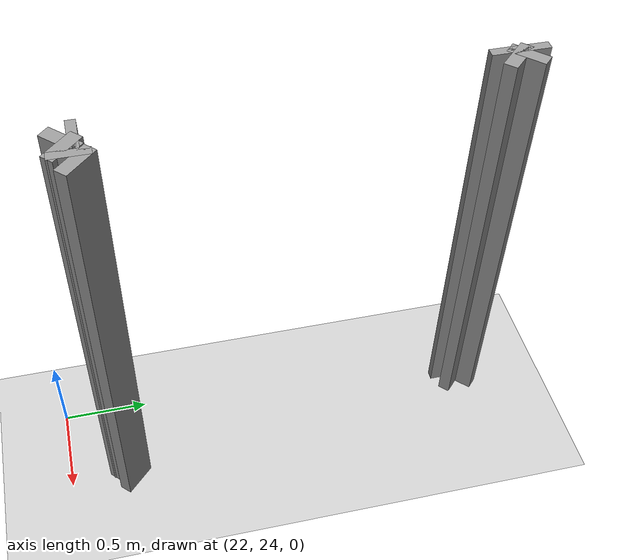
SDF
<sdf version="1.4">
 <world name="1_wall">
  <model name="ground_plane">
   <static>1</static>
   <link name="link">
    <collision name="collision">
     <geometry><plane><normal>0 0 1</normal><size>1000 1000</size></plane></geometry>
     <surface><friction><ode><mu>100</mu><mu2>50</mu2></ode></friction></surface>
    </collision>
    <visual name="visual">
     <cast_shadows>0</cast_shadows>
     <geometry><plane><normal>0 0 1</normal><size>10000 10000</size></plane></geometry>
     <material>
      <script><uri>file://media/materials/scripts/gazebo.material</uri><name>Gazebo/Grey</name></script>
     </material>
    </visual>
    <velocity_decay><linear>0</linear><angular>0</angular></velocity_decay>
   </link>
  </model>
  <model name="Wall_563">
   <static>1</static>
   <link name="Wall_563">
    <collision name="Wall_Collision_563">
     <geometry><box><size>0.05000000000000071 0.2 2.5</size></box></geometry>
     <pose>0 0 1.25 0 -0 0</pose>
    </collision>
    <visual name="Wall_Visual_563">
     <pose>0 0 1.25 0 -0 0</pose>
     <geometry><box><size>0.05000000000000071 0.2 2.5</size></box></geometry>
     <material>
      <script><uri>file://media/materials/scripts/gazebo.material</uri><name>Gazebo/Grey</name></script>
     </material>
    </visual>
    <velocity_decay><linear>0</linear><angular>0</angular></velocity_decay>
    <pose>22.175000000000004 26.450000000000003 0 0 0 0.0</pose>
   </link>
  </model>
  <model name="Wall_564">
   <static>1</static>
   <link name="Wall_564">
    <collision name="Wall_Collision_564">
     <geometry><box><size>0.07071067811865074 0.2 2.5</size></box></geometry>
     <pose>0 0 1.25 0 -0 0</pose>
    </collision>
    <visual name="Wall_Visual_564">
     <pose>0 0 1.25 0 -0 0</pose>
     <geometry><box><size>0.07071067811865074 0.2 2.5</size></box></geometry>
     <material>
      <script><uri>file://media/materials/scripts/gazebo.material</uri><name>Gazebo/Grey</name></script>
     </material>
    </visual>
    <velocity_decay><linear>0</linear><angular>0</angular></velocity_decay>
    <pose>22.225 26.475 0 0 0 0.7853981633974483</pose>
   </link>
  </model>
  <model name="Wall_565">
   <static>1</static>
   <link name="Wall_565">
    <collision name="Wall_Collision_565">
     <geometry><box><size>0.07071067811865325 0.2 2.5</size></box></geometry>
     <pose>0 0 1.25 0 -0 0</pose>
    </collision>
    <visual name="Wall_Visual_565">
     <pose>0 0 1.25 0 -0 0</pose>
     <geometry><box><size>0.07071067811865325 0.2 2.5</size></box></geometry>
     <material>
      <script><uri>file://media/materials/scripts/gazebo.material</uri><name>Gazebo/Grey</name></script>
     </material>
    </visual>
    <velocity_decay><linear>0</linear><angular>0</angular></velocity_decay>
    <pose>22.225 26.525 0 0 0 2.3561944901923093</pose>
   </link>
  </model>
  <model name="Wall_566">
   <static>1</static>
   <link name="Wall_566">
    <collision name="Wall_Collision_566">
     <geometry><box><size>0.05000000000000071 0.2 2.5</size></box></geometry>
     <pose>0 0 1.25 0 -0 0</pose>
    </collision>
    <visual name="Wall_Visual_566">
     <pose>0 0 1.25 0 -0 0</pose>
     <geometry><box><size>0.05000000000000071 0.2 2.5</size></box></geometry>
     <material>
      <script><uri>file://media/materials/scripts/gazebo.material</uri><name>Gazebo/Grey</name></script>
     </material>
    </visual>
    <velocity_decay><linear>0</linear><angular>0</angular></velocity_decay>
    <pose>22.175000000000004 26.55 0 0 0 3.141592653589793</pose>
   </link>
  </model>
  <model name="Wall_567">
   <static>1</static>
   <link name="Wall_567">
    <collision name="Wall_Collision_567">
     <geometry><box><size>0.05000000000000071 0.2 2.5</size></box></geometry>
     <pose>0 0 1.25 0 -0 0</pose>
    </collision>
    <visual name="Wall_Visual_567">
     <pose>0 0 1.25 0 -0 0</pose>
     <geometry><box><size>0.05000000000000071 0.2 2.5</size></box></geometry>
     <material>
      <script><uri>file://media/materials/scripts/gazebo.material</uri><name>Gazebo/Grey</name></script>
     </material>
    </visual>
    <velocity_decay><linear>0</linear><angular>0</angular></velocity_decay>
    <pose>22.35 24.375 0 0 0 -1.5707963267948966</pose>
   </link>
  </model>
  <model name="Wall_568">
   <static>1</static>
   <link name="Wall_568">
    <collision name="Wall_Collision_568">
     <geometry><box><size>0.07071067811865576 0.2 2.5</size></box></geometry>
     <pose>0 0 1.25 0 -0 0</pose>
    </collision>
    <visual name="Wall_Visual_568">
     <pose>0 0 1.25 0 -0 0</pose>
     <geometry><box><size>0.07071067811865576 0.2 2.5</size></box></geometry>
     <material>
      <script><uri>file://media/materials/scripts/gazebo.material</uri><name>Gazebo/Grey</name></script>
     </material>
    </visual>
    <velocity_decay><linear>0</linear><angular>0</angular></velocity_decay>
    <pose>22.375 24.325000000000003 0 0 0 -0.7853981633974483</pose>
   </link>
  </model>
  <model name="Wall_569">
   <static>1</static>
   <link name="Wall_569">
    <collision name="Wall_Collision_569">
     <geometry><box><size>0.07071067811865576 0.2 2.5</size></box></geometry>
     <pose>0 0 1.25 0 -0 0</pose>
    </collision>
    <visual name="Wall_Visual_569">
     <pose>0 0 1.25 0 -0 0</pose>
     <geometry><box><size>0.07071067811865576 0.2 2.5</size></box></geometry>
     <material>
      <script><uri>file://media/materials/scripts/gazebo.material</uri><name>Gazebo/Grey</name></script>
     </material>
    </visual>
    <velocity_decay><linear>0</linear><angular>0</angular></velocity_decay>
    <pose>22.425000000000004 24.325000000000003 0 0 0 0.7853981633974483</pose>
   </link>
  </model>
  <model name="Wall_570">
   <static>1</static>
   <link name="Wall_570">
    <collision name="Wall_Collision_570">
     <geometry><box><size>0.04999999999999716 0.2 2.5</size></box></geometry>
     <pose>0 0 1.25 0 -0 0</pose>
    </collision>
    <visual name="Wall_Visual_570">
     <pose>0 0 1.25 0 -0 0</pose>
     <geometry><box><size>0.04999999999999716 0.2 2.5</size></box></geometry>
     <material>
      <script><uri>file://media/materials/scripts/gazebo.material</uri><name>Gazebo/Grey</name></script>
     </material>
    </visual>
    <velocity_decay><linear>0</linear><angular>0</angular></velocity_decay>
    <pose>22.475 24.35 0 0 0 0.0</pose>
   </link>
  </model>
  <model name="Wall_571">
   <static>1</static>
   <link name="Wall_571">
    <collision name="Wall_Collision_571">
     <geometry><box><size>0.07071067811865576 0.2 2.5</size></box></geometry>
     <pose>0 0 1.25 0 -0 0</pose>
    </collision>
    <visual name="Wall_Visual_571">
     <pose>0 0 1.25 0 -0 0</pose>
     <geometry><box><size>0.07071067811865576 0.2 2.5</size></box></geometry>
     <material>
      <script><uri>file://media/materials/scripts/gazebo.material</uri><name>Gazebo/Grey</name></script>
     </material>
    </visual>
    <velocity_decay><linear>0</linear><angular>0</angular></velocity_decay>
    <pose>22.525 24.375 0 0 0 0.7853981633974483</pose>
   </link>
  </model>
 </world>
</sdf>
